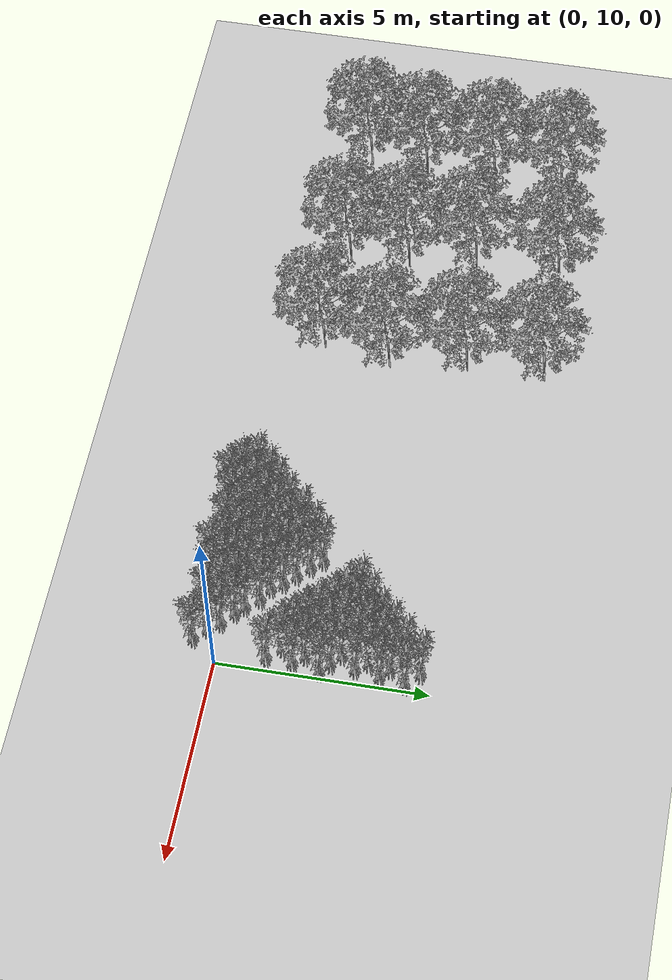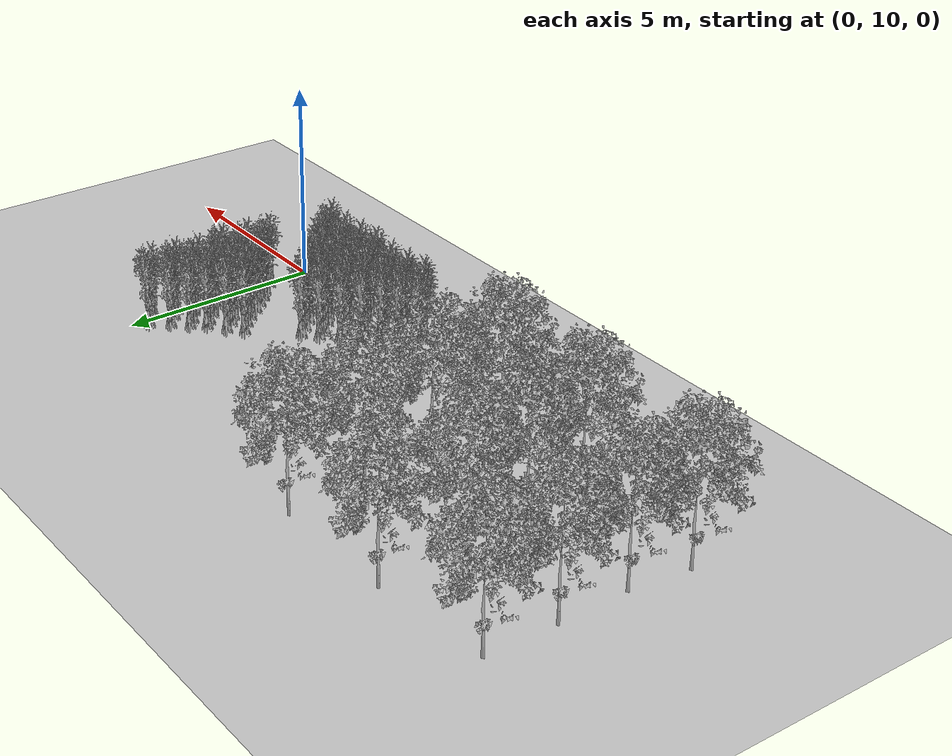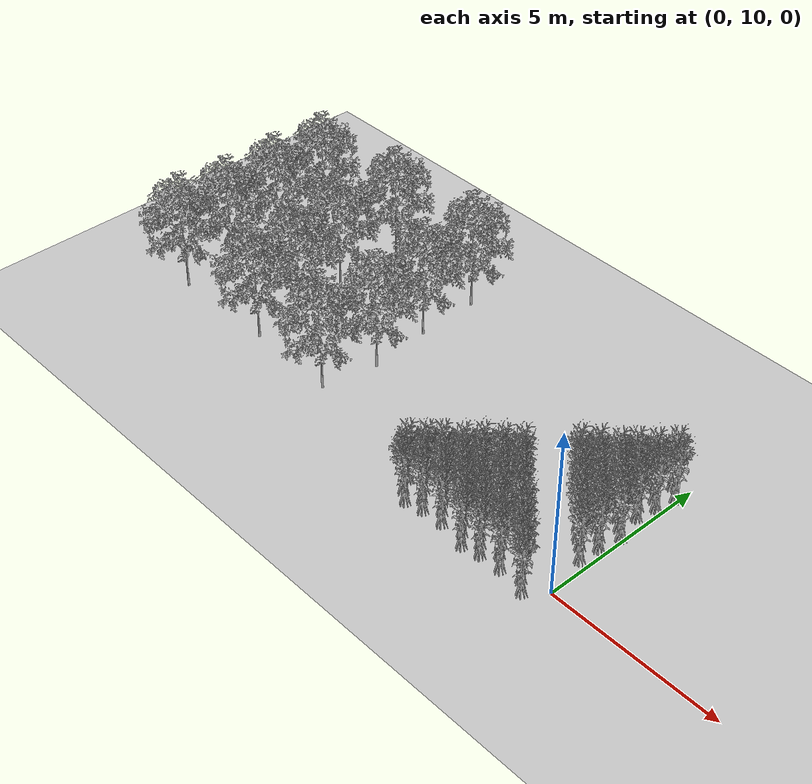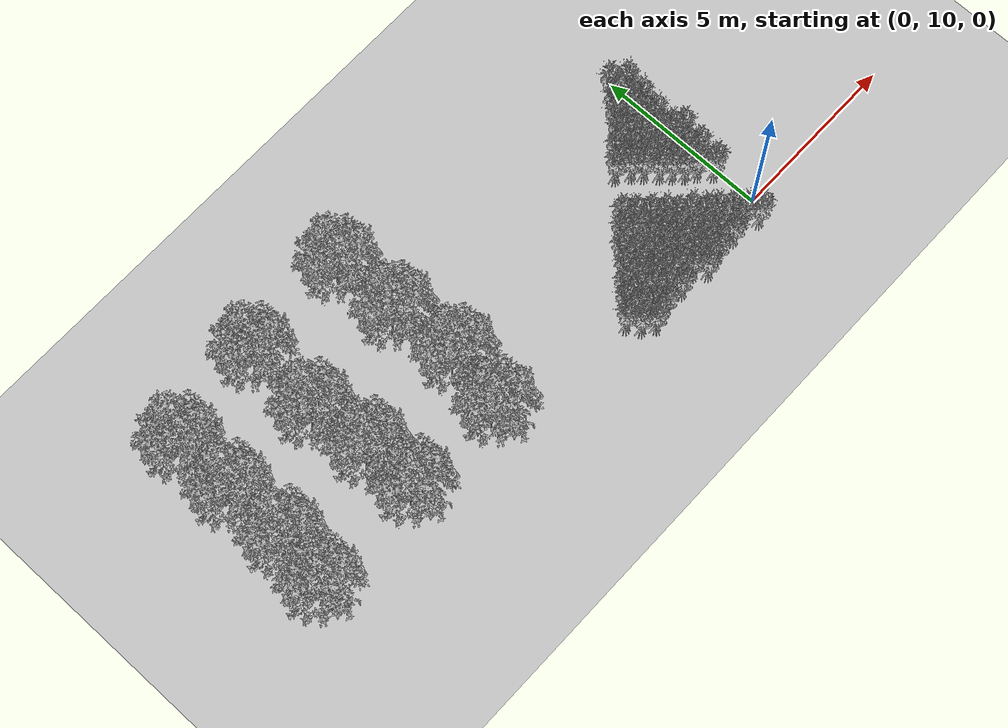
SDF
<sdf version="1.7">
 <world name="farmland_world">
  <model name="ground_plane">
   <static>1</static>
   <link name="link">
    <collision name="collision">
     <geometry><plane><normal>0 0 1</normal><size>40.0 40.0</size></plane></geometry>
     <surface><friction><ode><mu>100</mu><mu2>50</mu2></ode></friction></surface>
    </collision>
    <visual name="visual">
     <cast_shadows>0</cast_shadows>
     <geometry><plane><normal>0 0 1</normal><size>40.0 40.0</size></plane></geometry>
     <material>
      <script><uri>file://media/materials/scripts/gazebo.material</uri><name>Gazebo/Grey</name></script>
     </material>
    </visual>
   </link>
  </model>
  <model name="tree_0_0">
   <static>1</static>
   <link name="link">
    <collision name="collision">
     <geometry><mesh><uri>model://Birch_tree/birch_tree_5p.obj</uri><scale>1 1 1</scale></mesh></geometry>
     <surface><friction><ode><mu>100</mu><mu2>50</mu2></ode></friction></surface>
    </collision>
    <visual name="visual">
     <geometry><mesh><uri>model://Birch_tree/birch_tree_5p.obj</uri><scale>1 1 1</scale></mesh></geometry>
    </visual>
   </link>
   <pose>-15.059012775614557 15.855233422151644 0 0 0 0</pose>
  </model>
  <model name="tree_0_1">
   <static>1</static>
   <link name="link">
    <collision name="collision">
     <geometry><mesh><uri>model://Birch_tree/birch_tree_5p.obj</uri><scale>1 1 1</scale></mesh></geometry>
     <surface><friction><ode><mu>100</mu><mu2>50</mu2></ode></friction></surface>
    </collision>
    <visual name="visual">
     <geometry><mesh><uri>model://Birch_tree/birch_tree_5p.obj</uri><scale>1 1 1</scale></mesh></geometry>
    </visual>
   </link>
   <pose>-15.108912450633719 14.116969423663859 0 0 0 0</pose>
  </model>
  <model name="tree_0_2">
   <static>1</static>
   <link name="link">
    <collision name="collision">
     <geometry><mesh><uri>model://Birch_tree/birch_tree_5p.obj</uri><scale>1 1 1</scale></mesh></geometry>
     <surface><friction><ode><mu>100</mu><mu2>50</mu2></ode></friction></surface>
    </collision>
    <visual name="visual">
     <geometry><mesh><uri>model://Birch_tree/birch_tree_5p.obj</uri><scale>1 1 1</scale></mesh></geometry>
    </visual>
   </link>
   <pose>-15.077792916858806 12.366255272204592 0 0 0 0</pose>
  </model>
  <model name="tree_0_3">
   <static>1</static>
   <link name="link">
    <collision name="collision">
     <geometry><mesh><uri>model://Birch_tree/birch_tree_5p.obj</uri><scale>1 1 1</scale></mesh></geometry>
     <surface><friction><ode><mu>100</mu><mu2>50</mu2></ode></friction></surface>
    </collision>
    <visual name="visual">
     <geometry><mesh><uri>model://Birch_tree/birch_tree_5p.obj</uri><scale>1 1 1</scale></mesh></geometry>
    </visual>
   </link>
   <pose>-15.262357777004812 10.881119997271313 0 0 0 0</pose>
  </model>
  <model name="tree_0_10">
   <static>1</static>
   <link name="link">
    <collision name="collision">
     <geometry><mesh><uri>model://Birch_tree/birch_tree_5p.obj</uri><scale>1 1 1</scale></mesh></geometry>
     <surface><friction><ode><mu>100</mu><mu2>50</mu2></ode></friction></surface>
    </collision>
    <visual name="visual">
     <geometry><mesh><uri>model://Birch_tree/birch_tree_5p.obj</uri><scale>1 1 1</scale></mesh></geometry>
    </visual>
   </link>
   <pose>-12.213730359629619 16.177215334826762 0 0 0 0</pose>
  </model>
  <model name="tree_0_11">
   <static>1</static>
   <link name="link">
    <collision name="collision">
     <geometry><mesh><uri>model://Birch_tree/birch_tree_5p.obj</uri><scale>1 1 1</scale></mesh></geometry>
     <surface><friction><ode><mu>100</mu><mu2>50</mu2></ode></friction></surface>
    </collision>
    <visual name="visual">
     <geometry><mesh><uri>model://Birch_tree/birch_tree_5p.obj</uri><scale>1 1 1</scale></mesh></geometry>
    </visual>
   </link>
   <pose>-12.283267974192942 14.087747977855141 0 0 0 0</pose>
  </model>
  <model name="tree_0_12">
   <static>1</static>
   <link name="link">
    <collision name="collision">
     <geometry><mesh><uri>model://Birch_tree/birch_tree_5p.obj</uri><scale>1 1 1</scale></mesh></geometry>
     <surface><friction><ode><mu>100</mu><mu2>50</mu2></ode></friction></surface>
    </collision>
    <visual name="visual">
     <geometry><mesh><uri>model://Birch_tree/birch_tree_5p.obj</uri><scale>1 1 1</scale></mesh></geometry>
    </visual>
   </link>
   <pose>-12.075032601513408 12.407185623305054 0 0 0 0</pose>
  </model>
  <model name="tree_0_13">
   <static>1</static>
   <link name="link">
    <collision name="collision">
     <geometry><mesh><uri>model://Birch_tree/birch_tree_5p.obj</uri><scale>1 1 1</scale></mesh></geometry>
     <surface><friction><ode><mu>100</mu><mu2>50</mu2></ode></friction></surface>
    </collision>
    <visual name="visual">
     <geometry><mesh><uri>model://Birch_tree/birch_tree_5p.obj</uri><scale>1 1 1</scale></mesh></geometry>
    </visual>
   </link>
   <pose>-12.026765028564846 10.917565747010455 0 0 0 0</pose>
  </model>
  <model name="tree_0_20">
   <static>1</static>
   <link name="link">
    <collision name="collision">
     <geometry><mesh><uri>model://Birch_tree/birch_tree_5p.obj</uri><scale>1 1 1</scale></mesh></geometry>
     <surface><friction><ode><mu>100</mu><mu2>50</mu2></ode></friction></surface>
    </collision>
    <visual name="visual">
     <geometry><mesh><uri>model://Birch_tree/birch_tree_5p.obj</uri><scale>1 1 1</scale></mesh></geometry>
    </visual>
   </link>
   <pose>-9.126919527044588 16.253895582484507 0 0 0 0</pose>
  </model>
  <model name="tree_0_21">
   <static>1</static>
   <link name="link">
    <collision name="collision">
     <geometry><mesh><uri>model://Birch_tree/birch_tree_5p.obj</uri><scale>1 1 1</scale></mesh></geometry>
     <surface><friction><ode><mu>100</mu><mu2>50</mu2></ode></friction></surface>
    </collision>
    <visual name="visual">
     <geometry><mesh><uri>model://Birch_tree/birch_tree_5p.obj</uri><scale>1 1 1</scale></mesh></geometry>
    </visual>
   </link>
   <pose>-9.077648108787704 14.355252017229716 0 0 0 0</pose>
  </model>
  <model name="tree_0_22">
   <static>1</static>
   <link name="link">
    <collision name="collision">
     <geometry><mesh><uri>model://Birch_tree/birch_tree_5p.obj</uri><scale>1 1 1</scale></mesh></geometry>
     <surface><friction><ode><mu>100</mu><mu2>50</mu2></ode></friction></surface>
    </collision>
    <visual name="visual">
     <geometry><mesh><uri>model://Birch_tree/birch_tree_5p.obj</uri><scale>1 1 1</scale></mesh></geometry>
    </visual>
   </link>
   <pose>-8.87209466249776 12.458780122995835 0 0 0 0</pose>
  </model>
  <model name="tree_0_23">
   <static>1</static>
   <link name="link">
    <collision name="collision">
     <geometry><mesh><uri>model://Birch_tree/birch_tree_5p.obj</uri><scale>1 1 1</scale></mesh></geometry>
     <surface><friction><ode><mu>100</mu><mu2>50</mu2></ode></friction></surface>
    </collision>
    <visual name="visual">
     <geometry><mesh><uri>model://Birch_tree/birch_tree_5p.obj</uri><scale>1 1 1</scale></mesh></geometry>
    </visual>
   </link>
   <pose>-9.1796147193597 10.799036561196706 0 0 0 0</pose>
  </model>
  <model name="tree_2_37">
   <static>1</static>
   <link name="link">
    <collision name="collision">
     <geometry><mesh><uri>model://Corn/corn_5p.obj</uri><scale>1 1 1</scale></mesh></geometry>
     <surface><friction><ode><mu>100</mu><mu2>50</mu2></ode></friction></surface>
    </collision>
    <visual name="visual">
     <geometry><mesh><uri>model://Corn/corn_5p.obj</uri><scale>1 1 1</scale></mesh></geometry>
    </visual>
   </link>
   <pose>-4.441796837469054 9.463145591725388 0 0 0 0</pose>
  </model>
  <model name="tree_2_38">
   <static>1</static>
   <link name="link">
    <collision name="collision">
     <geometry><mesh><uri>model://Corn/corn_5p.obj</uri><scale>1 1 1</scale></mesh></geometry>
     <surface><friction><ode><mu>100</mu><mu2>50</mu2></ode></friction></surface>
    </collision>
    <visual name="visual">
     <geometry><mesh><uri>model://Corn/corn_5p.obj</uri><scale>1 1 1</scale></mesh></geometry>
    </visual>
   </link>
   <pose>-4.751287089560355 9.693784638895822 0 0 0 0</pose>
  </model>
  <model name="tree_2_39">
   <static>1</static>
   <link name="link">
    <collision name="collision">
     <geometry><mesh><uri>model://Corn/corn_5p.obj</uri><scale>1 1 1</scale></mesh></geometry>
     <surface><friction><ode><mu>100</mu><mu2>50</mu2></ode></friction></surface>
    </collision>
    <visual name="visual">
     <geometry><mesh><uri>model://Corn/corn_5p.obj</uri><scale>1 1 1</scale></mesh></geometry>
    </visual>
   </link>
   <pose>-4.96595136045494 10.042013681424944 0 0 0 0</pose>
  </model>
  <model name="tree_2_73">
   <static>1</static>
   <link name="link">
    <collision name="collision">
     <geometry><mesh><uri>model://Corn/corn_5p.obj</uri><scale>1 1 1</scale></mesh></geometry>
     <surface><friction><ode><mu>100</mu><mu2>50</mu2></ode></friction></surface>
    </collision>
    <visual name="visual">
     <geometry><mesh><uri>model://Corn/corn_5p.obj</uri><scale>1 1 1</scale></mesh></geometry>
    </visual>
   </link>
   <pose>-2.426852832500116 9.448159211636376 0 0 0 0</pose>
  </model>
  <model name="tree_2_74">
   <static>1</static>
   <link name="link">
    <collision name="collision">
     <geometry><mesh><uri>model://Corn/corn_5p.obj</uri><scale>1 1 1</scale></mesh></geometry>
     <surface><friction><ode><mu>100</mu><mu2>50</mu2></ode></friction></surface>
    </collision>
    <visual name="visual">
     <geometry><mesh><uri>model://Corn/corn_5p.obj</uri><scale>1 1 1</scale></mesh></geometry>
    </visual>
   </link>
   <pose>-2.7001910417156165 9.7335421469701 0 0 0 0</pose>
  </model>
  <model name="tree_2_75">
   <static>1</static>
   <link name="link">
    <collision name="collision">
     <geometry><mesh><uri>model://Corn/corn_5p.obj</uri><scale>1 1 1</scale></mesh></geometry>
     <surface><friction><ode><mu>100</mu><mu2>50</mu2></ode></friction></surface>
    </collision>
    <visual name="visual">
     <geometry><mesh><uri>model://Corn/corn_5p.obj</uri><scale>1 1 1</scale></mesh></geometry>
    </visual>
   </link>
   <pose>-2.9400762178133406 9.997085620269134 0 0 0 0</pose>
  </model>
  <model name="tree_2_76">
   <static>1</static>
   <link name="link">
    <collision name="collision">
     <geometry><mesh><uri>model://Corn/corn_5p.obj</uri><scale>1 1 1</scale></mesh></geometry>
     <surface><friction><ode><mu>100</mu><mu2>50</mu2></ode></friction></surface>
    </collision>
    <visual name="visual">
     <geometry><mesh><uri>model://Corn/corn_5p.obj</uri><scale>1 1 1</scale></mesh></geometry>
    </visual>
   </link>
   <pose>-3.2091005454081163 10.24903217823296 0 0 0 0</pose>
  </model>
  <model name="tree_2_77">
   <static>1</static>
   <link name="link">
    <collision name="collision">
     <geometry><mesh><uri>model://Corn/corn_5p.obj</uri><scale>1 1 1</scale></mesh></geometry>
     <surface><friction><ode><mu>100</mu><mu2>50</mu2></ode></friction></surface>
    </collision>
    <visual name="visual">
     <geometry><mesh><uri>model://Corn/corn_5p.obj</uri><scale>1 1 1</scale></mesh></geometry>
    </visual>
   </link>
   <pose>-3.462562731299714 10.438522746546855 0 0 0 0</pose>
  </model>
  <model name="tree_2_78">
   <static>1</static>
   <link name="link">
    <collision name="collision">
     <geometry><mesh><uri>model://Corn/corn_5p.obj</uri><scale>1 1 1</scale></mesh></geometry>
     <surface><friction><ode><mu>100</mu><mu2>50</mu2></ode></friction></surface>
    </collision>
    <visual name="visual">
     <geometry><mesh><uri>model://Corn/corn_5p.obj</uri><scale>1 1 1</scale></mesh></geometry>
    </visual>
   </link>
   <pose>-3.7121581625972526 10.70475180629954 0 0 0 0</pose>
  </model>
  <model name="tree_2_79">
   <static>1</static>
   <link name="link">
    <collision name="collision">
     <geometry><mesh><uri>model://Corn/corn_5p.obj</uri><scale>1 1 1</scale></mesh></geometry>
     <surface><friction><ode><mu>100</mu><mu2>50</mu2></ode></friction></surface>
    </collision>
    <visual name="visual">
     <geometry><mesh><uri>model://Corn/corn_5p.obj</uri><scale>1 1 1</scale></mesh></geometry>
    </visual>
   </link>
   <pose>-3.991470478944465 10.97876131222679 0 0 0 0</pose>
  </model>
  <model name="tree_2_109">
   <static>1</static>
   <link name="link">
    <collision name="collision">
     <geometry><mesh><uri>model://Corn/corn_5p.obj</uri><scale>1 1 1</scale></mesh></geometry>
     <surface><friction><ode><mu>100</mu><mu2>50</mu2></ode></friction></surface>
    </collision>
    <visual name="visual">
     <geometry><mesh><uri>model://Corn/corn_5p.obj</uri><scale>1 1 1</scale></mesh></geometry>
    </visual>
   </link>
   <pose>-0.4156900105595269 9.434056714371025 0 0 0 0</pose>
  </model>
  <model name="tree_2_110">
   <static>1</static>
   <link name="link">
    <collision name="collision">
     <geometry><mesh><uri>model://Corn/corn_5p.obj</uri><scale>1 1 1</scale></mesh></geometry>
     <surface><friction><ode><mu>100</mu><mu2>50</mu2></ode></friction></surface>
    </collision>
    <visual name="visual">
     <geometry><mesh><uri>model://Corn/corn_5p.obj</uri><scale>1 1 1</scale></mesh></geometry>
    </visual>
   </link>
   <pose>-0.7009652764994058 9.710018512826743 0 0 0 0</pose>
  </model>
  <model name="tree_2_111">
   <static>1</static>
   <link name="link">
    <collision name="collision">
     <geometry><mesh><uri>model://Corn/corn_5p.obj</uri><scale>1 1 1</scale></mesh></geometry>
     <surface><friction><ode><mu>100</mu><mu2>50</mu2></ode></friction></surface>
    </collision>
    <visual name="visual">
     <geometry><mesh><uri>model://Corn/corn_5p.obj</uri><scale>1 1 1</scale></mesh></geometry>
    </visual>
   </link>
   <pose>-0.914066508333395 9.975523800014887 0 0 0 0</pose>
  </model>
  <model name="tree_2_112">
   <static>1</static>
   <link name="link">
    <collision name="collision">
     <geometry><mesh><uri>model://Corn/corn_5p.obj</uri><scale>1 1 1</scale></mesh></geometry>
     <surface><friction><ode><mu>100</mu><mu2>50</mu2></ode></friction></surface>
    </collision>
    <visual name="visual">
     <geometry><mesh><uri>model://Corn/corn_5p.obj</uri><scale>1 1 1</scale></mesh></geometry>
    </visual>
   </link>
   <pose>-1.229472480300593 10.240781725241362 0 0 0 0</pose>
  </model>
  <model name="tree_2_113">
   <static>1</static>
   <link name="link">
    <collision name="collision">
     <geometry><mesh><uri>model://Corn/corn_5p.obj</uri><scale>1 1 1</scale></mesh></geometry>
     <surface><friction><ode><mu>100</mu><mu2>50</mu2></ode></friction></surface>
    </collision>
    <visual name="visual">
     <geometry><mesh><uri>model://Corn/corn_5p.obj</uri><scale>1 1 1</scale></mesh></geometry>
    </visual>
   </link>
   <pose>-1.4338071411070241 10.436877135664485 0 0 0 0</pose>
  </model>
  <model name="tree_2_114">
   <static>1</static>
   <link name="link">
    <collision name="collision">
     <geometry><mesh><uri>model://Corn/corn_5p.obj</uri><scale>1 1 1</scale></mesh></geometry>
     <surface><friction><ode><mu>100</mu><mu2>50</mu2></ode></friction></surface>
    </collision>
    <visual name="visual">
     <geometry><mesh><uri>model://Corn/corn_5p.obj</uri><scale>1 1 1</scale></mesh></geometry>
    </visual>
   </link>
   <pose>-1.6823606128419062 10.743236001541725 0 0 0 0</pose>
  </model>
  <model name="tree_2_115">
   <static>1</static>
   <link name="link">
    <collision name="collision">
     <geometry><mesh><uri>model://Corn/corn_5p.obj</uri><scale>1 1 1</scale></mesh></geometry>
     <surface><friction><ode><mu>100</mu><mu2>50</mu2></ode></friction></surface>
    </collision>
    <visual name="visual">
     <geometry><mesh><uri>model://Corn/corn_5p.obj</uri><scale>1 1 1</scale></mesh></geometry>
    </visual>
   </link>
   <pose>-2.016346603966583 10.928656302908555 0 0 0 0</pose>
  </model>
  <model name="tree_2_116">
   <static>1</static>
   <link name="link">
    <collision name="collision">
     <geometry><mesh><uri>model://Corn/corn_5p.obj</uri><scale>1 1 1</scale></mesh></geometry>
     <surface><friction><ode><mu>100</mu><mu2>50</mu2></ode></friction></surface>
    </collision>
    <visual name="visual">
     <geometry><mesh><uri>model://Corn/corn_5p.obj</uri><scale>1 1 1</scale></mesh></geometry>
    </visual>
   </link>
   <pose>-2.1970122878443266 11.19219457129768 0 0 0 0</pose>
  </model>
  <model name="tree_2_117">
   <static>1</static>
   <link name="link">
    <collision name="collision">
     <geometry><mesh><uri>model://Corn/corn_5p.obj</uri><scale>1 1 1</scale></mesh></geometry>
     <surface><friction><ode><mu>100</mu><mu2>50</mu2></ode></friction></surface>
    </collision>
    <visual name="visual">
     <geometry><mesh><uri>model://Corn/corn_5p.obj</uri><scale>1 1 1</scale></mesh></geometry>
    </visual>
   </link>
   <pose>-2.4524322318793055 11.448774852801114 0 0 0 0</pose>
  </model>
  <model name="tree_2_118">
   <static>1</static>
   <link name="link">
    <collision name="collision">
     <geometry><mesh><uri>model://Corn/corn_5p.obj</uri><scale>1 1 1</scale></mesh></geometry>
     <surface><friction><ode><mu>100</mu><mu2>50</mu2></ode></friction></surface>
    </collision>
    <visual name="visual">
     <geometry><mesh><uri>model://Corn/corn_5p.obj</uri><scale>1 1 1</scale></mesh></geometry>
    </visual>
   </link>
   <pose>-2.7278565375029142 11.729466839017045 0 0 0 0</pose>
  </model>
  <model name="tree_2_119">
   <static>1</static>
   <link name="link">
    <collision name="collision">
     <geometry><mesh><uri>model://Corn/corn_5p.obj</uri><scale>1 1 1</scale></mesh></geometry>
     <surface><friction><ode><mu>100</mu><mu2>50</mu2></ode></friction></surface>
    </collision>
    <visual name="visual">
     <geometry><mesh><uri>model://Corn/corn_5p.obj</uri><scale>1 1 1</scale></mesh></geometry>
    </visual>
   </link>
   <pose>-2.9525660135210168 11.992263695187896 0 0 0 0</pose>
  </model>
  <model name="tree_2_152">
   <static>1</static>
   <link name="link">
    <collision name="collision">
     <geometry><mesh><uri>model://Corn/corn_5p.obj</uri><scale>1 1 1</scale></mesh></geometry>
     <surface><friction><ode><mu>100</mu><mu2>50</mu2></ode></friction></surface>
    </collision>
    <visual name="visual">
     <geometry><mesh><uri>model://Corn/corn_5p.obj</uri><scale>1 1 1</scale></mesh></geometry>
    </visual>
   </link>
   <pose>-0.20677365661777097 11.178044165705595 0 0 0 0</pose>
  </model>
  <model name="tree_2_153">
   <static>1</static>
   <link name="link">
    <collision name="collision">
     <geometry><mesh><uri>model://Corn/corn_5p.obj</uri><scale>1 1 1</scale></mesh></geometry>
     <surface><friction><ode><mu>100</mu><mu2>50</mu2></ode></friction></surface>
    </collision>
    <visual name="visual">
     <geometry><mesh><uri>model://Corn/corn_5p.obj</uri><scale>1 1 1</scale></mesh></geometry>
    </visual>
   </link>
   <pose>-0.5018383068038443 11.498370246199226 0 0 0 0</pose>
  </model>
  <model name="tree_2_154">
   <static>1</static>
   <link name="link">
    <collision name="collision">
     <geometry><mesh><uri>model://Corn/corn_5p.obj</uri><scale>1 1 1</scale></mesh></geometry>
     <surface><friction><ode><mu>100</mu><mu2>50</mu2></ode></friction></surface>
    </collision>
    <visual name="visual">
     <geometry><mesh><uri>model://Corn/corn_5p.obj</uri><scale>1 1 1</scale></mesh></geometry>
    </visual>
   </link>
   <pose>-0.7581416862493188 11.70389188611576 0 0 0 0</pose>
  </model>
  <model name="tree_2_155">
   <static>1</static>
   <link name="link">
    <collision name="collision">
     <geometry><mesh><uri>model://Corn/corn_5p.obj</uri><scale>1 1 1</scale></mesh></geometry>
     <surface><friction><ode><mu>100</mu><mu2>50</mu2></ode></friction></surface>
    </collision>
    <visual name="visual">
     <geometry><mesh><uri>model://Corn/corn_5p.obj</uri><scale>1 1 1</scale></mesh></geometry>
    </visual>
   </link>
   <pose>-0.9899861603827039 11.947404105409017 0 0 0 0</pose>
  </model>
  <model name="tree_2_156">
   <static>1</static>
   <link name="link">
    <collision name="collision">
     <geometry><mesh><uri>model://Corn/corn_5p.obj</uri><scale>1 1 1</scale></mesh></geometry>
     <surface><friction><ode><mu>100</mu><mu2>50</mu2></ode></friction></surface>
    </collision>
    <visual name="visual">
     <geometry><mesh><uri>model://Corn/corn_5p.obj</uri><scale>1 1 1</scale></mesh></geometry>
    </visual>
   </link>
   <pose>-1.2163503949748518 12.197833456092932 0 0 0 0</pose>
  </model>
  <model name="tree_2_157">
   <static>1</static>
   <link name="link">
    <collision name="collision">
     <geometry><mesh><uri>model://Corn/corn_5p.obj</uri><scale>1 1 1</scale></mesh></geometry>
     <surface><friction><ode><mu>100</mu><mu2>50</mu2></ode></friction></surface>
    </collision>
    <visual name="visual">
     <geometry><mesh><uri>model://Corn/corn_5p.obj</uri><scale>1 1 1</scale></mesh></geometry>
    </visual>
   </link>
   <pose>-1.4802580672505512 12.514013868262017 0 0 0 0</pose>
  </model>
  <model name="tree_2_158">
   <static>1</static>
   <link name="link">
    <collision name="collision">
     <geometry><mesh><uri>model://Corn/corn_5p.obj</uri><scale>1 1 1</scale></mesh></geometry>
     <surface><friction><ode><mu>100</mu><mu2>50</mu2></ode></friction></surface>
    </collision>
    <visual name="visual">
     <geometry><mesh><uri>model://Corn/corn_5p.obj</uri><scale>1 1 1</scale></mesh></geometry>
    </visual>
   </link>
   <pose>-1.702365397686014 12.75370582539447 0 0 0 0</pose>
  </model>
  <model name="tree_2_159">
   <static>1</static>
   <link name="link">
    <collision name="collision">
     <geometry><mesh><uri>model://Corn/corn_5p.obj</uri><scale>1 1 1</scale></mesh></geometry>
     <surface><friction><ode><mu>100</mu><mu2>50</mu2></ode></friction></surface>
    </collision>
    <visual name="visual">
     <geometry><mesh><uri>model://Corn/corn_5p.obj</uri><scale>1 1 1</scale></mesh></geometry>
    </visual>
   </link>
   <pose>-2.0406613281179817 13.029213771745479 0 0 0 0</pose>
  </model>
  <model name="tree_2_196">
   <static>1</static>
   <link name="link">
    <collision name="collision">
     <geometry><mesh><uri>model://Corn/corn_5p.obj</uri><scale>1 1 1</scale></mesh></geometry>
     <surface><friction><ode><mu>100</mu><mu2>50</mu2></ode></friction></surface>
    </collision>
    <visual name="visual">
     <geometry><mesh><uri>model://Corn/corn_5p.obj</uri><scale>1 1 1</scale></mesh></geometry>
    </visual>
   </link>
   <pose>-0.2423601848875358 13.23043012695758 0 0 0 0</pose>
  </model>
  <model name="tree_2_197">
   <static>1</static>
   <link name="link">
    <collision name="collision">
     <geometry><mesh><uri>model://Corn/corn_5p.obj</uri><scale>1 1 1</scale></mesh></geometry>
     <surface><friction><ode><mu>100</mu><mu2>50</mu2></ode></friction></surface>
    </collision>
    <visual name="visual">
     <geometry><mesh><uri>model://Corn/corn_5p.obj</uri><scale>1 1 1</scale></mesh></geometry>
    </visual>
   </link>
   <pose>-0.44132620126978156 13.511133811051009 0 0 0 0</pose>
  </model>
  <model name="tree_2_198">
   <static>1</static>
   <link name="link">
    <collision name="collision">
     <geometry><mesh><uri>model://Corn/corn_5p.obj</uri><scale>1 1 1</scale></mesh></geometry>
     <surface><friction><ode><mu>100</mu><mu2>50</mu2></ode></friction></surface>
    </collision>
    <visual name="visual">
     <geometry><mesh><uri>model://Corn/corn_5p.obj</uri><scale>1 1 1</scale></mesh></geometry>
    </visual>
   </link>
   <pose>-0.7860055358467463 13.743077907802714 0 0 0 0</pose>
  </model>
  <model name="tree_2_199">
   <static>1</static>
   <link name="link">
    <collision name="collision">
     <geometry><mesh><uri>model://Corn/corn_5p.obj</uri><scale>1 1 1</scale></mesh></geometry>
     <surface><friction><ode><mu>100</mu><mu2>50</mu2></ode></friction></surface>
    </collision>
    <visual name="visual">
     <geometry><mesh><uri>model://Corn/corn_5p.obj</uri><scale>1 1 1</scale></mesh></geometry>
    </visual>
   </link>
   <pose>-1.0213233232437977 13.955280666962603 0 0 0 0</pose>
  </model>
  <model name="tree_2_276">
   <static>1</static>
   <link name="link">
    <collision name="collision">
     <geometry><mesh><uri>model://Corn/corn_5p.obj</uri><scale>1 1 1</scale></mesh></geometry>
     <surface><friction><ode><mu>100</mu><mu2>50</mu2></ode></friction></surface>
    </collision>
    <visual name="visual">
     <geometry><mesh><uri>model://Corn/corn_5p.obj</uri><scale>1 1 1</scale></mesh></geometry>
    </visual>
   </link>
   <pose>-3.9239636813696213 9.581776576054416 0 0 0 0</pose>
  </model>
  <model name="tree_2_277">
   <static>1</static>
   <link name="link">
    <collision name="collision">
     <geometry><mesh><uri>model://Corn/corn_5p.obj</uri><scale>1 1 1</scale></mesh></geometry>
     <surface><friction><ode><mu>100</mu><mu2>50</mu2></ode></friction></surface>
    </collision>
    <visual name="visual">
     <geometry><mesh><uri>model://Corn/corn_5p.obj</uri><scale>1 1 1</scale></mesh></geometry>
    </visual>
   </link>
   <pose>-4.195453706219439 9.808441085797192 0 0 0 0</pose>
  </model>
  <model name="tree_2_278">
   <static>1</static>
   <link name="link">
    <collision name="collision">
     <geometry><mesh><uri>model://Corn/corn_5p.obj</uri><scale>1 1 1</scale></mesh></geometry>
     <surface><friction><ode><mu>100</mu><mu2>50</mu2></ode></friction></surface>
    </collision>
    <visual name="visual">
     <geometry><mesh><uri>model://Corn/corn_5p.obj</uri><scale>1 1 1</scale></mesh></geometry>
    </visual>
   </link>
   <pose>-4.392820949812106 10.054198148274184 0 0 0 0</pose>
  </model>
  <model name="tree_2_279">
   <static>1</static>
   <link name="link">
    <collision name="collision">
     <geometry><mesh><uri>model://Corn/corn_5p.obj</uri><scale>1 1 1</scale></mesh></geometry>
     <surface><friction><ode><mu>100</mu><mu2>50</mu2></ode></friction></surface>
    </collision>
    <visual name="visual">
     <geometry><mesh><uri>model://Corn/corn_5p.obj</uri><scale>1 1 1</scale></mesh></geometry>
    </visual>
   </link>
   <pose>-4.63965547237263 10.376583816685647 0 0 0 0</pose>
  </model>
  <model name="tree_2_315">
   <static>1</static>
   <link name="link">
    <collision name="collision">
     <geometry><mesh><uri>model://Corn/corn_5p.obj</uri><scale>1 1 1</scale></mesh></geometry>
     <surface><friction><ode><mu>100</mu><mu2>50</mu2></ode></friction></surface>
    </collision>
    <visual name="visual">
     <geometry><mesh><uri>model://Corn/corn_5p.obj</uri><scale>1 1 1</scale></mesh></geometry>
    </visual>
   </link>
   <pose>-3.2843222841964503 9.609752403218625 0 0 0 0</pose>
  </model>
  <model name="tree_2_316">
   <static>1</static>
   <link name="link">
    <collision name="collision">
     <geometry><mesh><uri>model://Corn/corn_5p.obj</uri><scale>1 1 1</scale></mesh></geometry>
     <surface><friction><ode><mu>100</mu><mu2>50</mu2></ode></friction></surface>
    </collision>
    <visual name="visual">
     <geometry><mesh><uri>model://Corn/corn_5p.obj</uri><scale>1 1 1</scale></mesh></geometry>
    </visual>
   </link>
   <pose>-3.5650250616540267 9.881115258082955 0 0 0 0</pose>
  </model>
  <model name="tree_2_317">
   <static>1</static>
   <link name="link">
    <collision name="collision">
     <geometry><mesh><uri>model://Corn/corn_5p.obj</uri><scale>1 1 1</scale></mesh></geometry>
     <surface><friction><ode><mu>100</mu><mu2>50</mu2></ode></friction></surface>
    </collision>
    <visual name="visual">
     <geometry><mesh><uri>model://Corn/corn_5p.obj</uri><scale>1 1 1</scale></mesh></geometry>
    </visual>
   </link>
   <pose>-3.7784567995844616 10.176154350943017 0 0 0 0</pose>
  </model>
  <model name="tree_2_318">
   <static>1</static>
   <link name="link">
    <collision name="collision">
     <geometry><mesh><uri>model://Corn/corn_5p.obj</uri><scale>1 1 1</scale></mesh></geometry>
     <surface><friction><ode><mu>100</mu><mu2>50</mu2></ode></friction></surface>
    </collision>
    <visual name="visual">
     <geometry><mesh><uri>model://Corn/corn_5p.obj</uri><scale>1 1 1</scale></mesh></geometry>
    </visual>
   </link>
   <pose>-4.039079620093529 10.421791950833386 0 0 0 0</pose>
  </model>
  <model name="tree_2_319">
   <static>1</static>
   <link name="link">
    <collision name="collision">
     <geometry><mesh><uri>model://Corn/corn_5p.obj</uri><scale>1 1 1</scale></mesh></geometry>
     <surface><friction><ode><mu>100</mu><mu2>50</mu2></ode></friction></surface>
    </collision>
    <visual name="visual">
     <geometry><mesh><uri>model://Corn/corn_5p.obj</uri><scale>1 1 1</scale></mesh></geometry>
    </visual>
   </link>
   <pose>-4.372201920651018 10.660639404281879 0 0 0 0</pose>
  </model>
  <model name="tree_2_352">
   <static>1</static>
   <link name="link">
    <collision name="collision">
     <geometry><mesh><uri>model://Corn/corn_5p.obj</uri><scale>1 1 1</scale></mesh></geometry>
     <surface><friction><ode><mu>100</mu><mu2>50</mu2></ode></friction></surface>
    </collision>
    <visual name="visual">
     <geometry><mesh><uri>model://Corn/corn_5p.obj</uri><scale>1 1 1</scale></mesh></geometry>
    </visual>
   </link>
   <pose>-1.9162289357293814 9.560717898378368 0 0 0 0</pose>
  </model>
  <model name="tree_2_353">
   <static>1</static>
   <link name="link">
    <collision name="collision">
     <geometry><mesh><uri>model://Corn/corn_5p.obj</uri><scale>1 1 1</scale></mesh></geometry>
     <surface><friction><ode><mu>100</mu><mu2>50</mu2></ode></friction></surface>
    </collision>
    <visual name="visual">
     <geometry><mesh><uri>model://Corn/corn_5p.obj</uri><scale>1 1 1</scale></mesh></geometry>
    </visual>
   </link>
   <pose>-2.1323797225409478 9.783252838529883 0 0 0 0</pose>
  </model>
  <model name="tree_2_354">
   <static>1</static>
   <link name="link">
    <collision name="collision">
     <geometry><mesh><uri>model://Corn/corn_5p.obj</uri><scale>1 1 1</scale></mesh></geometry>
     <surface><friction><ode><mu>100</mu><mu2>50</mu2></ode></friction></surface>
    </collision>
    <visual name="visual">
     <geometry><mesh><uri>model://Corn/corn_5p.obj</uri><scale>1 1 1</scale></mesh></geometry>
    </visual>
   </link>
   <pose>-2.3785904591886147 10.00675071619225 0 0 0 0</pose>
  </model>
  <model name="tree_2_355">
   <static>1</static>
   <link name="link">
    <collision name="collision">
     <geometry><mesh><uri>model://Corn/corn_5p.obj</uri><scale>1 1 1</scale></mesh></geometry>
     <surface><friction><ode><mu>100</mu><mu2>50</mu2></ode></friction></surface>
    </collision>
    <visual name="visual">
     <geometry><mesh><uri>model://Corn/corn_5p.obj</uri><scale>1 1 1</scale></mesh></geometry>
    </visual>
   </link>
   <pose>-2.669092572930729 10.290062494427671 0 0 0 0</pose>
  </model>
  <model name="tree_2_356">
   <static>1</static>
   <link name="link">
    <collision name="collision">
     <geometry><mesh><uri>model://Corn/corn_5p.obj</uri><scale>1 1 1</scale></mesh></geometry>
     <surface><friction><ode><mu>100</mu><mu2>50</mu2></ode></friction></surface>
    </collision>
    <visual name="visual">
     <geometry><mesh><uri>model://Corn/corn_5p.obj</uri><scale>1 1 1</scale></mesh></geometry>
    </visual>
   </link>
   <pose>-2.8826454198713 10.598309192982432 0 0 0 0</pose>
  </model>
  <model name="tree_2_357">
   <static>1</static>
   <link name="link">
    <collision name="collision">
     <geometry><mesh><uri>model://Corn/corn_5p.obj</uri><scale>1 1 1</scale></mesh></geometry>
     <surface><friction><ode><mu>100</mu><mu2>50</mu2></ode></friction></surface>
    </collision>
    <visual name="visual">
     <geometry><mesh><uri>model://Corn/corn_5p.obj</uri><scale>1 1 1</scale></mesh></geometry>
    </visual>
   </link>
   <pose>-3.1921478281791584 10.819560784366093 0 0 0 0</pose>
  </model>
  <model name="tree_2_358">
   <static>1</static>
   <link name="link">
    <collision name="collision">
     <geometry><mesh><uri>model://Corn/corn_5p.obj</uri><scale>1 1 1</scale></mesh></geometry>
     <surface><friction><ode><mu>100</mu><mu2>50</mu2></ode></friction></surface>
    </collision>
    <visual name="visual">
     <geometry><mesh><uri>model://Corn/corn_5p.obj</uri><scale>1 1 1</scale></mesh></geometry>
    </visual>
   </link>
   <pose>-3.45383019741244 11.046119147899804 0 0 0 0</pose>
  </model>
  <model name="tree_2_359">
   <static>1</static>
   <link name="link">
    <collision name="collision">
     <geometry><mesh><uri>model://Corn/corn_5p.obj</uri><scale>1 1 1</scale></mesh></geometry>
     <surface><friction><ode><mu>100</mu><mu2>50</mu2></ode></friction></surface>
    </collision>
    <visual name="visual">
     <geometry><mesh><uri>model://Corn/corn_5p.obj</uri><scale>1 1 1</scale></mesh></geometry>
    </visual>
   </link>
   <pose>-3.6902763258539903 11.363690420496365 0 0 0 0</pose>
  </model>
  <model name="tree_2_391">
   <static>1</static>
   <link name="link">
    <collision name="collision">
     <geometry><mesh><uri>model://Corn/corn_5p.obj</uri><scale>1 1 1</scale></mesh></geometry>
     <surface><friction><ode><mu>100</mu><mu2>50</mu2></ode></friction></surface>
    </collision>
    <visual name="visual">
     <geometry><mesh><uri>model://Corn/corn_5p.obj</uri><scale>1 1 1</scale></mesh></geometry>
    </visual>
   </link>
   <pose>-1.2679581463307346 9.586961825861998 0 0 0 0</pose>
  </model>
  <model name="tree_2_392">
   <static>1</static>
   <link name="link">
    <collision name="collision">
     <geometry><mesh><uri>model://Corn/corn_5p.obj</uri><scale>1 1 1</scale></mesh></geometry>
     <surface><friction><ode><mu>100</mu><mu2>50</mu2></ode></friction></surface>
    </collision>
    <visual name="visual">
     <geometry><mesh><uri>model://Corn/corn_5p.obj</uri><scale>1 1 1</scale></mesh></geometry>
    </visual>
   </link>
   <pose>-1.5798357835555201 9.885254949854753 0 0 0 0</pose>
  </model>
  <model name="tree_2_393">
   <static>1</static>
   <link name="link">
    <collision name="collision">
     <geometry><mesh><uri>model://Corn/corn_5p.obj</uri><scale>1 1 1</scale></mesh></geometry>
     <surface><friction><ode><mu>100</mu><mu2>50</mu2></ode></friction></surface>
    </collision>
    <visual name="visual">
     <geometry><mesh><uri>model://Corn/corn_5p.obj</uri><scale>1 1 1</scale></mesh></geometry>
    </visual>
   </link>
   <pose>-1.8149346305862861 10.174922654255093 0 0 0 0</pose>
  </model>
  <model name="tree_2_394">
   <static>1</static>
   <link name="link">
    <collision name="collision">
     <geometry><mesh><uri>model://Corn/corn_5p.obj</uri><scale>1 1 1</scale></mesh></geometry>
     <surface><friction><ode><mu>100</mu><mu2>50</mu2></ode></friction></surface>
    </collision>
    <visual name="visual">
     <geometry><mesh><uri>model://Corn/corn_5p.obj</uri><scale>1 1 1</scale></mesh></geometry>
    </visual>
   </link>
   <pose>-2.0785967375302525 10.340836706152457 0 0 0 0</pose>
  </model>
  <model name="tree_2_395">
   <static>1</static>
   <link name="link">
    <collision name="collision">
     <geometry><mesh><uri>model://Corn/corn_5p.obj</uri><scale>1 1 1</scale></mesh></geometry>
     <surface><friction><ode><mu>100</mu><mu2>50</mu2></ode></friction></surface>
    </collision>
    <visual name="visual">
     <geometry><mesh><uri>model://Corn/corn_5p.obj</uri><scale>1 1 1</scale></mesh></geometry>
    </visual>
   </link>
   <pose>-2.3347330219412226 10.650550318914663 0 0 0 0</pose>
  </model>
  <model name="tree_2_396">
   <static>1</static>
   <link name="link">
    <collision name="collision">
     <geometry><mesh><uri>model://Corn/corn_5p.obj</uri><scale>1 1 1</scale></mesh></geometry>
     <surface><friction><ode><mu>100</mu><mu2>50</mu2></ode></friction></surface>
    </collision>
    <visual name="visual">
     <geometry><mesh><uri>model://Corn/corn_5p.obj</uri><scale>1 1 1</scale></mesh></geometry>
    </visual>
   </link>
   <pose>-2.5619611131806668 10.947847278700896 0 0 0 0</pose>
  </model>
  <model name="tree_2_397">
   <static>1</static>
   <link name="link">
    <collision name="collision">
     <geometry><mesh><uri>model://Corn/corn_5p.obj</uri><scale>1 1 1</scale></mesh></geometry>
     <surface><friction><ode><mu>100</mu><mu2>50</mu2></ode></friction></surface>
    </collision>
    <visual name="visual">
     <geometry><mesh><uri>model://Corn/corn_5p.obj</uri><scale>1 1 1</scale></mesh></geometry>
    </visual>
   </link>
   <pose>-2.7866748492488465 11.130136194030747 0 0 0 0</pose>
  </model>
  <model name="tree_2_398">
   <static>1</static>
   <link name="link">
    <collision name="collision">
     <geometry><mesh><uri>model://Corn/corn_5p.obj</uri><scale>1 1 1</scale></mesh></geometry>
     <surface><friction><ode><mu>100</mu><mu2>50</mu2></ode></friction></surface>
    </collision>
    <visual name="visual">
     <geometry><mesh><uri>model://Corn/corn_5p.obj</uri><scale>1 1 1</scale></mesh></geometry>
    </visual>
   </link>
   <pose>-3.115170656659286 11.439092659792157 0 0 0 0</pose>
  </model>
  <model name="tree_2_399">
   <static>1</static>
   <link name="link">
    <collision name="collision">
     <geometry><mesh><uri>model://Corn/corn_5p.obj</uri><scale>1 1 1</scale></mesh></geometry>
     <surface><friction><ode><mu>100</mu><mu2>50</mu2></ode></friction></surface>
    </collision>
    <visual name="visual">
     <geometry><mesh><uri>model://Corn/corn_5p.obj</uri><scale>1 1 1</scale></mesh></geometry>
    </visual>
   </link>
   <pose>-3.3066373327229215 11.704358527161233 0 0 0 0</pose>
  </model>
  <model name="tree_2_433">
   <static>1</static>
   <link name="link">
    <collision name="collision">
     <geometry><mesh><uri>model://Corn/corn_5p.obj</uri><scale>1 1 1</scale></mesh></geometry>
     <surface><friction><ode><mu>100</mu><mu2>50</mu2></ode></friction></surface>
    </collision>
    <visual name="visual">
     <geometry><mesh><uri>model://Corn/corn_5p.obj</uri><scale>1 1 1</scale></mesh></geometry>
    </visual>
   </link>
   <pose>-0.16519511747330143 11.796280165052094 0 0 0 0</pose>
  </model>
  <model name="tree_2_434">
   <static>1</static>
   <link name="link">
    <collision name="collision">
     <geometry><mesh><uri>model://Corn/corn_5p.obj</uri><scale>1 1 1</scale></mesh></geometry>
     <surface><friction><ode><mu>100</mu><mu2>50</mu2></ode></friction></surface>
    </collision>
    <visual name="visual">
     <geometry><mesh><uri>model://Corn/corn_5p.obj</uri><scale>1 1 1</scale></mesh></geometry>
    </visual>
   </link>
   <pose>-0.3916097224488939 12.05463799969072 0 0 0 0</pose>
  </model>
  <model name="tree_2_435">
   <static>1</static>
   <link name="link">
    <collision name="collision">
     <geometry><mesh><uri>model://Corn/corn_5p.obj</uri><scale>1 1 1</scale></mesh></geometry>
     <surface><friction><ode><mu>100</mu><mu2>50</mu2></ode></friction></surface>
    </collision>
    <visual name="visual">
     <geometry><mesh><uri>model://Corn/corn_5p.obj</uri><scale>1 1 1</scale></mesh></geometry>
    </visual>
   </link>
   <pose>-0.6574707755783619 12.260530590314275 0 0 0 0</pose>
  </model>
  <model name="tree_2_436">
   <static>1</static>
   <link name="link">
    <collision name="collision">
     <geometry><mesh><uri>model://Corn/corn_5p.obj</uri><scale>1 1 1</scale></mesh></geometry>
     <surface><friction><ode><mu>100</mu><mu2>50</mu2></ode></friction></surface>
    </collision>
    <visual name="visual">
     <geometry><mesh><uri>model://Corn/corn_5p.obj</uri><scale>1 1 1</scale></mesh></geometry>
    </visual>
   </link>
   <pose>-0.8978161839789596 12.521018385920764 0 0 0 0</pose>
  </model>
  <model name="tree_2_437">
   <static>1</static>
   <link name="link">
    <collision name="collision">
     <geometry><mesh><uri>model://Corn/corn_5p.obj</uri><scale>1 1 1</scale></mesh></geometry>
     <surface><friction><ode><mu>100</mu><mu2>50</mu2></ode></friction></surface>
    </collision>
    <visual name="visual">
     <geometry><mesh><uri>model://Corn/corn_5p.obj</uri><scale>1 1 1</scale></mesh></geometry>
    </visual>
   </link>
   <pose>-1.2038866886166568 12.83751228687138 0 0 0 0</pose>
  </model>
  <model name="tree_2_438">
   <static>1</static>
   <link name="link">
    <collision name="collision">
     <geometry><mesh><uri>model://Corn/corn_5p.obj</uri><scale>1 1 1</scale></mesh></geometry>
     <surface><friction><ode><mu>100</mu><mu2>50</mu2></ode></friction></surface>
    </collision>
    <visual name="visual">
     <geometry><mesh><uri>model://Corn/corn_5p.obj</uri><scale>1 1 1</scale></mesh></geometry>
    </visual>
   </link>
   <pose>-1.4324037606563065 13.040570236066884 0 0 0 0</pose>
  </model>
  <model name="tree_2_439">
   <static>1</static>
   <link name="link">
    <collision name="collision">
     <geometry><mesh><uri>model://Corn/corn_5p.obj</uri><scale>1 1 1</scale></mesh></geometry>
     <surface><friction><ode><mu>100</mu><mu2>50</mu2></ode></friction></surface>
    </collision>
    <visual name="visual">
     <geometry><mesh><uri>model://Corn/corn_5p.obj</uri><scale>1 1 1</scale></mesh></geometry>
    </visual>
   </link>
   <pose>-1.696200043462369 13.324635577751241 0 0 0 0</pose>
  </model>
  <model name="tree_2_474">
   <static>1</static>
   <link name="link">
    <collision name="collision">
     <geometry><mesh><uri>model://Corn/corn_5p.obj</uri><scale>1 1 1</scale></mesh></geometry>
     <surface><friction><ode><mu>100</mu><mu2>50</mu2></ode></friction></surface>
    </collision>
    <visual name="visual">
     <geometry><mesh><uri>model://Corn/corn_5p.obj</uri><scale>1 1 1</scale></mesh></geometry>
    </visual>
   </link>
   <pose>-0.04219638326736376 12.437924132130062 0 0 0 0</pose>
  </model>
  <model name="tree_2_475">
   <static>1</static>
   <link name="link">
    <collision name="collision">
     <geometry><mesh><uri>model://Corn/corn_5p.obj</uri><scale>1 1 1</scale></mesh></geometry>
     <surface><friction><ode><mu>100</mu><mu2>50</mu2></ode></friction></surface>
    </collision>
    <visual name="visual">
     <geometry><mesh><uri>model://Corn/corn_5p.obj</uri><scale>1 1 1</scale></mesh></geometry>
    </visual>
   </link>
   <pose>-0.2863250666518624 12.654532460077421 0 0 0 0</pose>
  </model>
  <model name="tree_2_476">
   <static>1</static>
   <link name="link">
    <collision name="collision">
     <geometry><mesh><uri>model://Corn/corn_5p.obj</uri><scale>1 1 1</scale></mesh></geometry>
     <surface><friction><ode><mu>100</mu><mu2>50</mu2></ode></friction></surface>
    </collision>
    <visual name="visual">
     <geometry><mesh><uri>model://Corn/corn_5p.obj</uri><scale>1 1 1</scale></mesh></geometry>
    </visual>
   </link>
   <pose>-0.5458569159233748 12.877019813462116 0 0 0 0</pose>
  </model>
  <model name="tree_2_477">
   <static>1</static>
   <link name="link">
    <collision name="collision">
     <geometry><mesh><uri>model://Corn/corn_5p.obj</uri><scale>1 1 1</scale></mesh></geometry>
     <surface><friction><ode><mu>100</mu><mu2>50</mu2></ode></friction></surface>
    </collision>
    <visual name="visual">
     <geometry><mesh><uri>model://Corn/corn_5p.obj</uri><scale>1 1 1</scale></mesh></geometry>
    </visual>
   </link>
   <pose>-0.7971081463444565 13.180658995333811 0 0 0 0</pose>
  </model>
  <model name="tree_2_478">
   <static>1</static>
   <link name="link">
    <collision name="collision">
     <geometry><mesh><uri>model://Corn/corn_5p.obj</uri><scale>1 1 1</scale></mesh></geometry>
     <surface><friction><ode><mu>100</mu><mu2>50</mu2></ode></friction></surface>
    </collision>
    <visual name="visual">
     <geometry><mesh><uri>model://Corn/corn_5p.obj</uri><scale>1 1 1</scale></mesh></geometry>
    </visual>
   </link>
   <pose>-1.0685465641122203 13.436116236567718 0 0 0 0</pose>
  </model>
  <model name="tree_2_479">
   <static>1</static>
   <link name="link">
    <collision name="collision">
     <geometry><mesh><uri>model://Corn/corn_5p.obj</uri><scale>1 1 1</scale></mesh></geometry>
     <surface><friction><ode><mu>100</mu><mu2>50</mu2></ode></friction></surface>
    </collision>
    <visual name="visual">
     <geometry><mesh><uri>model://Corn/corn_5p.obj</uri><scale>1 1 1</scale></mesh></geometry>
    </visual>
   </link>
   <pose>-1.2809652603217994 13.629473110988402 0 0 0 0</pose>
  </model>
  <model name="tree_2_517">
   <static>1</static>
   <link name="link">
    <collision name="collision">
     <geometry><mesh><uri>model://Corn/corn_5p.obj</uri><scale>1 1 1</scale></mesh></geometry>
     <surface><friction><ode><mu>100</mu><mu2>50</mu2></ode></friction></surface>
    </collision>
    <visual name="visual">
     <geometry><mesh><uri>model://Corn/corn_5p.obj</uri><scale>1 1 1</scale></mesh></geometry>
    </visual>
   </link>
   <pose>-0.13619008190102944 13.81551298291741 0 0 0 0</pose>
  </model>
  <model name="tree_2_518">
   <static>1</static>
   <link name="link">
    <collision name="collision">
     <geometry><mesh><uri>model://Corn/corn_5p.obj</uri><scale>1 1 1</scale></mesh></geometry>
     <surface><friction><ode><mu>100</mu><mu2>50</mu2></ode></friction></surface>
    </collision>
    <visual name="visual">
     <geometry><mesh><uri>model://Corn/corn_5p.obj</uri><scale>1 1 1</scale></mesh></geometry>
    </visual>
   </link>
   <pose>-0.36783794467162306 14.023838149170068 0 0 0 0</pose>
  </model>
  <model name="tree_2_519">
   <static>1</static>
   <link name="link">
    <collision name="collision">
     <geometry><mesh><uri>model://Corn/corn_5p.obj</uri><scale>1 1 1</scale></mesh></geometry>
     <surface><friction><ode><mu>100</mu><mu2>50</mu2></ode></friction></surface>
    </collision>
    <visual name="visual">
     <geometry><mesh><uri>model://Corn/corn_5p.obj</uri><scale>1 1 1</scale></mesh></geometry>
    </visual>
   </link>
   <pose>-0.6864307240817746 14.29799902805637 0 0 0 0</pose>
  </model>
  <model name="tree_2_558">
   <static>1</static>
   <link name="link">
    <collision name="collision">
     <geometry><mesh><uri>model://Corn/corn_5p.obj</uri><scale>1 1 1</scale></mesh></geometry>
     <surface><friction><ode><mu>100</mu><mu2>50</mu2></ode></friction></surface>
    </collision>
    <visual name="visual">
     <geometry><mesh><uri>model://Corn/corn_5p.obj</uri><scale>1 1 1</scale></mesh></geometry>
    </visual>
   </link>
   <pose>-0.026779294391744833 14.406833011832202 0 0 0 0</pose>
  </model>
  <model name="tree_2_559">
   <static>1</static>
   <link name="link">
    <collision name="collision">
     <geometry><mesh><uri>model://Corn/corn_5p.obj</uri><scale>1 1 1</scale></mesh></geometry>
     <surface><friction><ode><mu>100</mu><mu2>50</mu2></ode></friction></surface>
    </collision>
    <visual name="visual">
     <geometry><mesh><uri>model://Corn/corn_5p.obj</uri><scale>1 1 1</scale></mesh></geometry>
    </visual>
   </link>
   <pose>-0.37324532236282665 14.714906674519597 0 0 0 0</pose>
  </model>
 </world>
</sdf>
